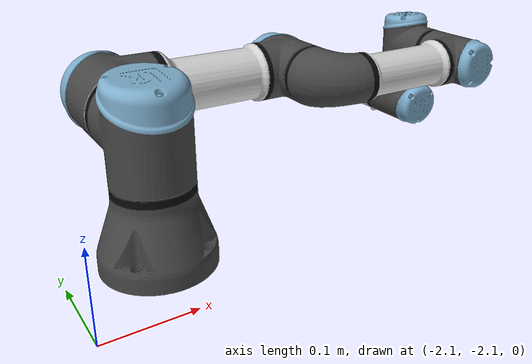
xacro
<?xml version="1.0"?>
<robot xmlns:xacro="http://www.ros.org/wiki/xacro" name="arm1">
    <xacro:arg name="initial_positions_file" default="initial_positions.yaml" />

    <!-- Import arm1 urdf file -->
    <xacro:include filename="$(find multi_ur_description)/urdf/arm1d.urdf" />

    <!-- Import control_xacro -->
    <xacro:include filename="arm1.ros2_control.xacro" />

    <xacro:arm1_ros2_control name="FakeSystem" initial_positions_file="$(arg initial_positions_file)"/>

</robot>

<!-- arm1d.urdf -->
<!-- |    This document was autogenerated by xacro from /home/roman/code/cps-gazebo-sim-2/multi_ur_description/urdf/arm1_wrapper.xacro | -->
<!-- |    EDITING THIS FILE BY HAND IS NOT RECOMMENDED                                 | -->
<robot name="arm1">
  <!-- tell the parser that there really is a world frame -->
  <link name="world"/>
  <!-- your other needed args… -->
  <ros2_control name="arm1" type="system">
    <hardware>
      <plugin>ign_ros2_control/IgnitionSystem</plugin>
    </hardware>
    <joint name="arm1_shoulder_pan_joint">
      <command_interface name="position"/>
      <command_interface name="velocity"/>
      <state_interface name="position">
        <!-- initial position for the FakeSystem and simulation -->
        <param name="initial_value">0.0</param>
      </state_interface>
      <state_interface name="velocity"/>
      <state_interface name="effort"/>
    </joint>
    <joint name="arm1_shoulder_lift_joint">
      <command_interface name="position"/>
      <command_interface name="velocity"/>
      <state_interface name="position">
        <!-- initial position for the FakeSystem and simulation -->
        <param name="initial_value">-1.57</param>
      </state_interface>
      <state_interface name="velocity"/>
      <state_interface name="effort"/>
    </joint>
    <joint name="arm1_elbow_joint">
      <command_interface name="position"/>
      <command_interface name="velocity"/>
      <state_interface name="position">
        <!-- initial position for the FakeSystem and simulation -->
        <param name="initial_value">0.0</param>
      </state_interface>
      <state_interface name="velocity"/>
      <state_interface name="effort"/>
    </joint>
    <joint name="arm1_wrist_1_joint">
      <command_interface name="position"/>
      <command_interface name="velocity"/>
      <state_interface name="position">
        <!-- initial position for the FakeSystem and simulation -->
        <param name="initial_value">-1.57</param>
      </state_interface>
      <state_interface name="velocity"/>
      <state_interface name="effort"/>
    </joint>
    <joint name="arm1_wrist_2_joint">
      <command_interface name="position"/>
      <command_interface name="velocity"/>
      <state_interface name="position">
        <!-- initial position for the FakeSystem and simulation -->
        <param name="initial_value">0.0</param>
      </state_interface>
      <state_interface name="velocity"/>
      <state_interface name="effort"/>
    </joint>
    <joint name="arm1_wrist_3_joint">
      <command_interface name="position"/>
      <command_interface name="velocity"/>
      <state_interface name="position">
        <!-- initial position for the FakeSystem and simulation -->
        <param name="initial_value">0.0</param>
      </state_interface>
      <state_interface name="velocity"/>
      <state_interface name="effort"/>
    </joint>
  </ros2_control>
  <!-- Add URDF transmission elements (for ros_control) -->
  <!-- Placeholder for ros2_control transmission which don't yet exist -->
  <!-- links -  main serial chain -->
  <link name="arm1_base_link"/>
  <link name="arm1_base_link_inertia">
    <visual>
      <origin rpy="0 0 3.141592653589793" xyz="0 0 0"/>
      <geometry>
        <mesh filename="file:///home/roman/code/cps-gazebo-sim-2/install/multi_ur_description/share/multi_ur_description/meshes/ur3e/visual/base.dae"/>
      </geometry>
    </visual>
    <collision>
      <origin rpy="0 0 3.141592653589793" xyz="0 0 0"/>
      <geometry>
        <mesh filename="file:///home/roman/code/cps-gazebo-sim-2/install/multi_ur_description/share/multi_ur_description/meshes/ur3e/collision/base.stl"/>
      </geometry>
    </collision>
    <inertial>
      <mass value="2.0"/>
      <origin rpy="0 0 0" xyz="0 0 0"/>
      <inertia ixx="0.0030531654454" ixy="0.0" ixz="0.0" iyy="0.0030531654454" iyz="0.0" izz="0.005625"/>
    </inertial>
  </link>
  <link name="arm1_shoulder_link">
    <visual>
      <origin rpy="0 0 3.141592653589793" xyz="0 0 0"/>
      <geometry>
        <mesh filename="file:///home/roman/code/cps-gazebo-sim-2/install/multi_ur_description/share/multi_ur_description/meshes/ur3e/visual/shoulder.dae"/>
      </geometry>
    </visual>
    <collision>
      <origin rpy="0 0 3.141592653589793" xyz="0 0 0"/>
      <geometry>
        <mesh filename="file:///home/roman/code/cps-gazebo-sim-2/install/multi_ur_description/share/multi_ur_description/meshes/ur3e/collision/shoulder.stl"/>
      </geometry>
    </collision>
    <inertial>
      <mass value="2.0"/>
      <origin rpy="0 0 0" xyz="0 0 0"/>
      <inertia ixx="0.008093163429399999" ixy="0.0" ixz="0.0" iyy="0.008093163429399999" iyz="0.0" izz="0.005625"/>
    </inertial>
  </link>
  <link name="arm1_upper_arm_link">
    <visual>
      <origin rpy="1.5707963267948966 0 -1.5707963267948966" xyz="0 0 0.12"/>
      <geometry>
        <mesh filename="file:///home/roman/code/cps-gazebo-sim-2/install/multi_ur_description/share/multi_ur_description/meshes/ur3e/visual/upperarm.dae"/>
      </geometry>
    </visual>
    <collision>
      <origin rpy="1.5707963267948966 0 -1.5707963267948966" xyz="0 0 0.12"/>
      <geometry>
        <mesh filename="file:///home/roman/code/cps-gazebo-sim-2/install/multi_ur_description/share/multi_ur_description/meshes/ur3e/collision/upperarm.stl"/>
      </geometry>
    </collision>
    <inertial>
      <mass value="3.42"/>
      <origin rpy="0 1.5707963267948966 0" xyz="-0.121825 0.0 0.12"/>
      <inertia ixx="0.021728483221103233" ixy="0.0" ixz="0.0" iyy="0.021728483221103233" iyz="0.0" izz="0.00961875"/>
    </inertial>
  </link>
  <link name="arm1_forearm_link">
    <visual>
      <origin rpy="1.5707963267948966 0 -1.5707963267948966" xyz="0 0 0.027"/>
      <geometry>
        <mesh filename="file:///home/roman/code/cps-gazebo-sim-2/install/multi_ur_description/share/multi_ur_description/meshes/ur3e/visual/forearm.dae"/>
      </geometry>
    </visual>
    <collision>
      <origin rpy="1.5707963267948966 0 -1.5707963267948966" xyz="0 0 0.027"/>
      <geometry>
        <mesh filename="file:///home/roman/code/cps-gazebo-sim-2/install/multi_ur_description/share/multi_ur_description/meshes/ur3e/collision/forearm.stl"/>
      </geometry>
    </collision>
    <inertial>
      <mass value="1.26"/>
      <origin rpy="0 1.5707963267948966 0" xyz="-0.1066 0.0 0.027"/>
      <inertia ixx="0.0065445675821719194" ixy="0.0" ixz="0.0" iyy="0.0065445675821719194" iyz="0.0" izz="0.00354375"/>
    </inertial>
  </link>
  <link name="arm1_wrist_1_link">
    <visual>
      <origin rpy="1.5707963267948966 0 0" xyz="0 0 -0.104"/>
      <geometry>
        <mesh filename="file:///home/roman/code/cps-gazebo-sim-2/install/multi_ur_description/share/multi_ur_description/meshes/ur3e/visual/wrist1.dae"/>
      </geometry>
    </visual>
    <collision>
      <origin rpy="1.5707963267948966 0 0" xyz="0 0 -0.104"/>
      <geometry>
        <mesh filename="file:///home/roman/code/cps-gazebo-sim-2/install/multi_ur_description/share/multi_ur_description/meshes/ur3e/collision/wrist1.stl"/>
      </geometry>
    </collision>
    <inertial>
      <mass value="0.8"/>
      <origin rpy="0 0 0" xyz="0 0 0"/>
      <inertia ixx="0.002084999166" ixy="0.0" ixz="0.0" iyy="0.002084999166" iyz="0.0" izz="0.00225"/>
    </inertial>
  </link>
  <link name="arm1_wrist_2_link">
    <visual>
      <origin rpy="0 0 0" xyz="0 0 -0.08535"/>
      <geometry>
        <mesh filename="file:///home/roman/code/cps-gazebo-sim-2/install/multi_ur_description/share/multi_ur_description/meshes/ur3e/visual/wrist2.dae"/>
      </geometry>
    </visual>
    <collision>
      <origin rpy="0 0 0" xyz="0 0 -0.08535"/>
      <geometry>
        <mesh filename="file:///home/roman/code/cps-gazebo-sim-2/install/multi_ur_description/share/multi_ur_description/meshes/ur3e/collision/wrist2.stl"/>
      </geometry>
    </collision>
    <inertial>
      <mass value="0.8"/>
      <origin rpy="0 0 0" xyz="0 0 0"/>
      <inertia ixx="0.002084999166" ixy="0.0" ixz="0.0" iyy="0.002084999166" iyz="0.0" izz="0.00225"/>
    </inertial>
  </link>
  <link name="arm1_wrist_3_link">
    <visual>
      <origin rpy="1.5707963267948966 0 0" xyz="0 0 -0.0921"/>
      <geometry>
        <mesh filename="file:///home/roman/code/cps-gazebo-sim-2/install/multi_ur_description/share/multi_ur_description/meshes/ur3e/visual/wrist3.dae"/>
      </geometry>
    </visual>
    <collision>
      <origin rpy="1.5707963267948966 0 0" xyz="0 0 -0.0921"/>
      <geometry>
        <mesh filename="file:///home/roman/code/cps-gazebo-sim-2/install/multi_ur_description/share/multi_ur_description/meshes/ur3e/collision/wrist3.stl"/>
      </geometry>
    </collision>
    <inertial>
      <mass value="0.35"/>
      <origin rpy="0 0 0" xyz="0.0 0.0 -0.02"/>
      <inertia ixx="0.00013626661215999998" ixy="0.0" ixz="0.0" iyy="0.00013626661215999998" iyz="0.0" izz="0.0001792"/>
    </inertial>
  </link>
  <!-- base_joint fixes base_link to the environment -->
  <joint name="arm1_base_joint" type="fixed">
    <origin rpy="0 0 0.0" xyz="-2.0 -2.0 0.0"/>
    <parent link="world"/>
    <child link="arm1_base_link"/>
  </joint>
  <!-- joints - main serial chain -->
  <joint name="arm1_base_link-base_link_inertia" type="fixed">
    <parent link="arm1_base_link"/>
    <child link="arm1_base_link_inertia"/>
    <origin rpy="0 0 3.141592653589793" xyz="0 0 0"/>
  </joint>
  <joint name="arm1_shoulder_pan_joint" type="revolute">
    <parent link="arm1_base_link_inertia"/>
    <child link="arm1_shoulder_link"/>
    <origin rpy="0 0 0" xyz="0 0 0.15185"/>
    <axis xyz="0 0 1"/>
    <limit effort="56.0" lower="-6.283185307179586" upper="6.283185307179586" velocity="3.141592653589793"/>
    <dynamics damping="0" friction="0"/>
  </joint>
  <joint name="arm1_shoulder_lift_joint" type="revolute">
    <parent link="arm1_shoulder_link"/>
    <child link="arm1_upper_arm_link"/>
    <origin rpy="1.570796327 0 0" xyz="0 0 0"/>
    <axis xyz="0 0 1"/>
    <limit effort="56.0" lower="-6.283185307179586" upper="6.283185307179586" velocity="3.141592653589793"/>
    <dynamics damping="0" friction="0"/>
  </joint>
  <joint name="arm1_elbow_joint" type="revolute">
    <parent link="arm1_upper_arm_link"/>
    <child link="arm1_forearm_link"/>
    <origin rpy="0 0 0" xyz="-0.24355 0 0"/>
    <axis xyz="0 0 1"/>
    <limit effort="28.0" lower="-3.141592653589793" upper="3.141592653589793" velocity="3.141592653589793"/>
    <dynamics damping="0" friction="0"/>
  </joint>
  <joint name="arm1_wrist_1_joint" type="revolute">
    <parent link="arm1_forearm_link"/>
    <child link="arm1_wrist_1_link"/>
    <origin rpy="0 0 0" xyz="-0.2132 0 0.13105"/>
    <axis xyz="0 0 1"/>
    <limit effort="12.0" lower="-6.283185307179586" upper="6.283185307179586" velocity="6.283185307179586"/>
    <dynamics damping="0" friction="0"/>
  </joint>
  <joint name="arm1_wrist_2_joint" type="revolute">
    <parent link="arm1_wrist_1_link"/>
    <child link="arm1_wrist_2_link"/>
    <origin rpy="1.570796327 0 0" xyz="0 -0.08535 -1.750557762378351e-11"/>
    <axis xyz="0 0 1"/>
    <limit effort="12.0" lower="-6.283185307179586" upper="6.283185307179586" velocity="6.283185307179586"/>
    <dynamics damping="0" friction="0"/>
  </joint>
  <joint name="arm1_wrist_3_joint" type="revolute">
    <parent link="arm1_wrist_2_link"/>
    <child link="arm1_wrist_3_link"/>
    <origin rpy="1.570796326589793 3.141592653589793 3.141592653589793" xyz="0 0.0921 -1.8890025766262e-11"/>
    <axis xyz="0 0 1"/>
    <limit effort="12.0" lower="-6.283185307179586" upper="6.283185307179586" velocity="6.283185307179586"/>
    <dynamics damping="0" friction="0"/>
  </joint>
  <link name="arm1_ft_frame"/>
  <joint name="arm1_wrist_3_link-ft_frame" type="fixed">
    <parent link="arm1_wrist_3_link"/>
    <child link="arm1_ft_frame"/>
    <origin rpy="3.141592653589793 0 0" xyz="0 0 0"/>
  </joint>
  <!-- ROS-Industrial 'base' frame - base_link to UR 'Base' Coordinates transform -->
  <link name="arm1_base"/>
  <joint name="arm1_base_link-base_fixed_joint" type="fixed">
    <origin rpy="0 0 3.141592653589793" xyz="0 0 0"/>
    <parent link="arm1_base_link"/>
    <child link="arm1_base"/>
  </joint>
  <!-- ROS-Industrial 'flange' frame - attachment point for EEF models -->
  <link name="arm1_flange"/>
  <joint name="arm1_wrist_3-flange" type="fixed">
    <parent link="arm1_wrist_3_link"/>
    <child link="arm1_flange"/>
    <origin rpy="0 -1.5707963267948966 -1.5707963267948966" xyz="0 0 0"/>
  </joint>
  <!-- ROS-Industrial 'tool0' frame - all-zeros tool frame -->
  <link name="arm1_tool0"/>
  <joint name="arm1_flange-tool0" type="fixed">
    <!-- default toolframe - X+ left, Y+ up, Z+ front -->
    <origin rpy="1.5707963267948966 0 1.5707963267948966" xyz="0 0 0"/>
    <parent link="arm1_flange"/>
    <child link="arm1_tool0"/>
  </joint>
</robot>
